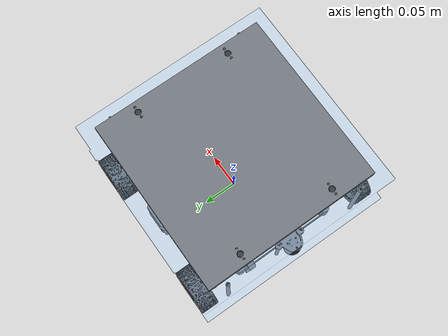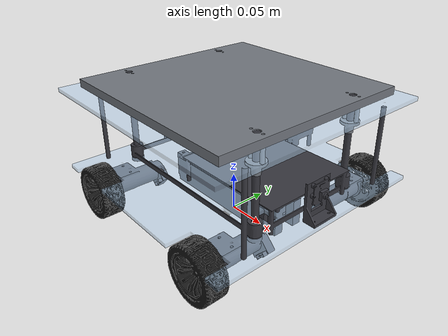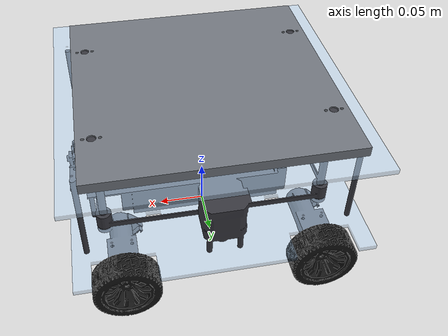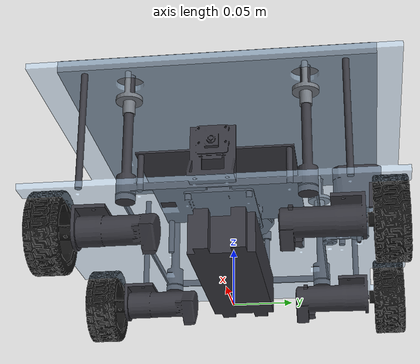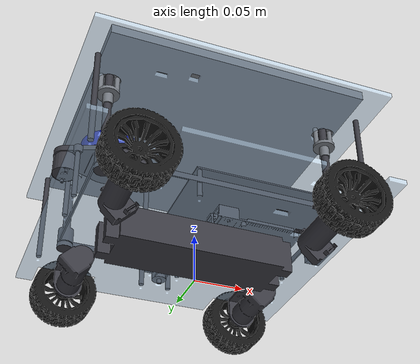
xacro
<?xml version="1.0"?>
<robot xmlns:xacro="http://www.ros.org/wiki/xacro" name="agv">

  <!-- ===================== Kich thuoc (m, kg) - theo CAD ===================== -->
  <!-- Mica -->
  <xacro:property name="plate_size"       value="0.30"/>   <!-- 30 x 30 cm -->
  <xacro:property name="plate_thickness"  value="0.005"/>
  <xacro:property name="plate_gap"        value="0.10"/>   <!-- mat tren tang 1 -> mat duoi tang 2 -->
  <xacro:property name="plate1_below_axle" value="0.0175"/> <!-- (*) theo ga chu L cua GA25: mat duoi tang 1 cao hon truc banh -->
  <xacro:property name="body_mass"        value="2.8"/>    <!-- (*) ca xe tru banh va mat nang: 2 mica ~1.0, 5 dong co ~0.7, pin LiPo 3S 5200mAh ~0.4, mach, lidar -->

  <!-- Banh "65 mm": duong kinh ngoai thuc 68 mm (model banh) -->
  <xacro:property name="wheel_radius"     value="0.034"/>
  <xacro:property name="wheel_width"      value="0.027"/>
  <xacro:property name="wheel_mass"       value="0.08"/>
  <xacro:property name="wheelbase"        value="0.20"/>   <!-- (*) truc truoc -> truc sau -->
  <xacro:property name="track_width"      value="0.27"/>   <!-- tam banh trai -> tam banh phai, banh nam trong khung 0.30 m -->
  <xacro:property name="effective_track"  value="0.383"/>  <!-- hieu chinh trong sim: quay tai cho 2.5 rad/s, odom 2.49 / that 2.32 rad/s voi track 0.357 -->

  <xacro:property name="lidar_x"          value="-0.092"/>
  <xacro:property name="lidar_scan_z"     value="0.1265"/> <!-- (*) so voi mat dat: giua dau quay (phan dung yen cao toi 0.119, dinh 0.1355) -->
  <xacro:property name="lidar_radius"     value="0.030"/>
  <xacro:property name="lidar_body_z0"    value="0.0871"/> <!-- day dong co lidar so voi mat dat -->
  <xacro:property name="lidar_body_z1"    value="0.1355"/>

  <!-- Mat nang tren tang 2 (4 vit me T8 + dai GT2 + NEMA17, tu giu tai khi mat dien) -->
  <xacro:property name="lift_plate_size"  value="0.26"/>
  <xacro:property name="lift_plate_thickness" value="0.01"/>
  <xacro:property name="lift_plate_mass"  value="0.8"/>    <!-- (*) mica 10 mm + 4 dai oc dong -->
  <xacro:property name="lift_gap"         value="0.002"/>  <!-- mat nang ha het cach tang 2 -->
  <xacro:property name="lift_stroke"      value="0.03"/>   <!-- mat nang ha het cao 0.1735 m, ke cao gam 0.18 m: nang ke len ~2.3 cm khoi san -->
  <xacro:property name="lift_speed"       value="0.0067"/> <!-- m/s: vit me T8 buoc 2 mm o 200 vong/phut, ~4.5 s cho het hanh trinh -->

  <!-- Toa do z theo base_link (truc banh) -->
  <xacro:property name="plate1_z"   value="${plate1_below_axle + plate_thickness / 2}"/>
  <xacro:property name="plate1_top" value="${plate1_below_axle + plate_thickness}"/>
  <xacro:property name="plate2_z"   value="${plate1_top + plate_gap + plate_thickness / 2}"/>
  <xacro:property name="plate2_top" value="${plate1_top + plate_gap + plate_thickness}"/>
  <xacro:property name="mesh_dir"   value="file://$(find agv_description)/meshes"/>

  <!-- ===================== Mau ===================== -->
  <material name="mica"><color rgba="0.75 0.88 1.0 0.5"/></material>
  <material name="black"><color rgba="0.08 0.08 0.08 1.0"/></material>
  <material name="grey"><color rgba="0.45 0.47 0.5 1.0"/></material>
  <material name="dark"><color rgba="0.22 0.22 0.25 1.0"/></material>
  <material name="lidar_blue"><color rgba="0.05 0.10 0.75 1.0"/></material>

  <!-- ===================== Macro quan tinh ===================== -->
  <xacro:macro name="box_inertia" params="m x y z *origin">
    <inertial>
      <xacro:insert_block name="origin"/>
      <mass value="${m}"/>
      <inertia ixx="${m * (y*y + z*z) / 12}" ixy="0" ixz="0"
               iyy="${m * (x*x + z*z) / 12}" iyz="0"
               izz="${m * (x*x + y*y) / 12}"/>
    </inertial>
  </xacro:macro>

  <!-- Truc cylinder dat theo z cua link -->
  <xacro:macro name="cylinder_inertia" params="m r h *origin">
    <inertial>
      <xacro:insert_block name="origin"/>
      <mass value="${m}"/>
      <inertia ixx="${m * (3*r*r + h*h) / 12}" ixy="0" ixz="0"
               iyy="${m * (3*r*r + h*h) / 12}" iyz="0"
               izz="${m * r * r / 2}"/>
    </inertial>
  </xacro:macro>

  <!-- ===================== Than xe ===================== -->
  <link name="base_footprint"/>

  <joint name="base_joint" type="fixed">
    <parent link="base_footprint"/>
    <child link="base_link"/>
    <origin xyz="0 0 ${wheel_radius}" rpy="0 0 0"/>
  </joint>

  <link name="base_link">
    <!-- Hinh hien thi tu CAD. Lidar (gpu_lidar) nhin thay cac luoi nay: 4 tru oc, 4 vit me nang -->
    <visual>
      <geometry><mesh filename="${mesh_dir}/base_plates.stl"/></geometry>
      <material name="mica"/>
    </visual>
    <visual>
      <geometry><mesh filename="${mesh_dir}/base_parts.stl"/></geometry>
      <material name="dark"/>
    </visual>
    <visual>
      <geometry><mesh filename="${mesh_dir}/lidar.stl"/></geometry>
      <material name="dark"/>
    </visual>
    <visual>
      <geometry><mesh filename="${mesh_dir}/lidar_head.stl"/></geometry>
      <material name="lidar_blue"/>
    </visual>

    <!-- Va cham: 2 tam mica + than lidar (banh nam trong cho khoet cua tang 1; cung model nen khong tu va cham) -->
    <collision>
      <origin xyz="0 0 ${plate1_z}"/>
      <geometry><box size="${plate_size} ${plate_size} ${plate_thickness}"/></geometry>
    </collision>
    <collision>
      <origin xyz="0 0 ${plate2_z}"/>
      <geometry><box size="${plate_size} ${plate_size} ${plate_thickness}"/></geometry>
    </collision>
    <collision>
      <origin xyz="${lidar_x} 0 ${(lidar_body_z0 + lidar_body_z1) / 2 - wheel_radius}"/>
      <geometry><cylinder radius="${lidar_radius}" length="${lidar_body_z1 - lidar_body_z0}"/></geometry>
    </collision>

    <!-- Khoi luong don o tang 1 (pin, dong co, mach) -> trong tam thap -->
    <xacro:box_inertia m="${body_mass}" x="${plate_size}" y="${plate_size}" z="0.06">
      <origin xyz="0 0 ${plate1_top + 0.02}"/>
    </xacro:box_inertia>
  </link>

  <!-- ===================== Banh xe ===================== -->
  <!-- prefix: fl/fr/rl/rr, x: +truoc/-sau, y: +trai/-phai -->
  <xacro:macro name="wheel" params="prefix x y">
    <link name="wheel_${prefix}_link">
      <!-- luoi banh trai (khop noi quay vao trong); banh phai quay 180 deg -->
      <visual>
        <origin xyz="0 0 0" rpy="0 0 ${0 if y > 0 else pi}"/>
        <geometry><mesh filename="${mesh_dir}/wheel.stl"/></geometry>
        <material name="black"/>
      </visual>
      <collision>
        <origin xyz="0 0 0" rpy="${pi/2} 0 0"/>
        <geometry><cylinder radius="${wheel_radius}" length="${wheel_width}"/></geometry>
      </collision>
      <xacro:cylinder_inertia m="${wheel_mass}" r="${wheel_radius}" h="${wheel_width}">
        <origin xyz="0 0 0" rpy="${pi/2} 0 0"/>
      </xacro:cylinder_inertia>
    </link>

    <joint name="wheel_${prefix}_joint" type="continuous">
      <parent link="base_link"/>
      <child link="wheel_${prefix}_link"/>
      <origin xyz="${x} ${y} 0" rpy="0 0 0"/>
      <axis xyz="0 1 0"/>
    </joint>
  </xacro:macro>

  <xacro:wheel prefix="fl" x="${ wheelbase/2}" y="${ track_width/2}"/>
  <xacro:wheel prefix="fr" x="${ wheelbase/2}" y="${-track_width/2}"/>
  <xacro:wheel prefix="rl" x="${-wheelbase/2}" y="${ track_width/2}"/>
  <xacro:wheel prefix="rr" x="${-wheelbase/2}" y="${-track_width/2}"/>

  <!-- ===================== Lidar (giua 2 tang, phia truoc) ===================== -->
  <!-- Hinh va va cham cua than lidar nam trong base_link; laser_frame chi la goc tia quet -->
  <link name="laser_frame">
    <xacro:cylinder_inertia m="0.01" r="0.01" h="0.01">
      <origin xyz="0 0 0" rpy="0 0 0"/>
    </xacro:cylinder_inertia>
  </link>

  <joint name="laser_joint" type="fixed">
    <parent link="base_link"/>
    <child link="laser_frame"/>
    <origin xyz="${lidar_x} 0 ${lidar_scan_z - wheel_radius}" rpy="0 0 0"/>
  </joint>

  <!-- ===================== Mat nang (tang 2) ===================== -->
  <link name="lift_plate">
    <visual>
      <geometry><mesh filename="${mesh_dir}/lift_plate.stl"/></geometry>
      <material name="grey"/>
    </visual>
    <!-- Ten cho cam bien tiep xuc "co ke": URDF -> SDF them duoi "_collision" thanh
         "lift_plate_collision" (ten dung trong agv_gazebo.xacro) -->
    <collision name="lift_plate">
      <geometry><box size="${lift_plate_size} ${lift_plate_size} ${lift_plate_thickness}"/></geometry>
    </collision>
    <xacro:box_inertia m="${lift_plate_mass}" x="${lift_plate_size}" y="${lift_plate_size}" z="${lift_plate_thickness}">
      <origin xyz="0 0 0"/>
    </xacro:box_inertia>
  </link>

  <joint name="lift_joint" type="prismatic">
    <parent link="base_link"/>
    <child link="lift_plate"/>
    <origin xyz="0 0 ${plate2_top + lift_gap + lift_plate_thickness / 2}" rpy="0 0 0"/>
    <axis xyz="0 0 1"/>
    <limit lower="0.0" upper="${lift_stroke}" effort="300" velocity="${lift_speed}"/>
  </joint>

  <!-- ===================== IMU (BNO055, tang 1) ===================== -->
  <link name="imu_link">
    <xacro:box_inertia m="0.01" x="0.02" y="0.02" z="0.005">
      <origin xyz="0 0 0"/>
    </xacro:box_inertia>
  </link>

  <joint name="imu_joint" type="fixed">
    <parent link="base_link"/>
    <child link="imu_link"/>
    <origin xyz="0 0 ${plate1_top}" rpy="0 0 0"/>
  </joint>

  <!-- Plugin va cam bien cho Gazebo (robot_state_publisher bo qua phan nay) -->
  <xacro:include filename="agv_gazebo.xacro"/>

</robot>
